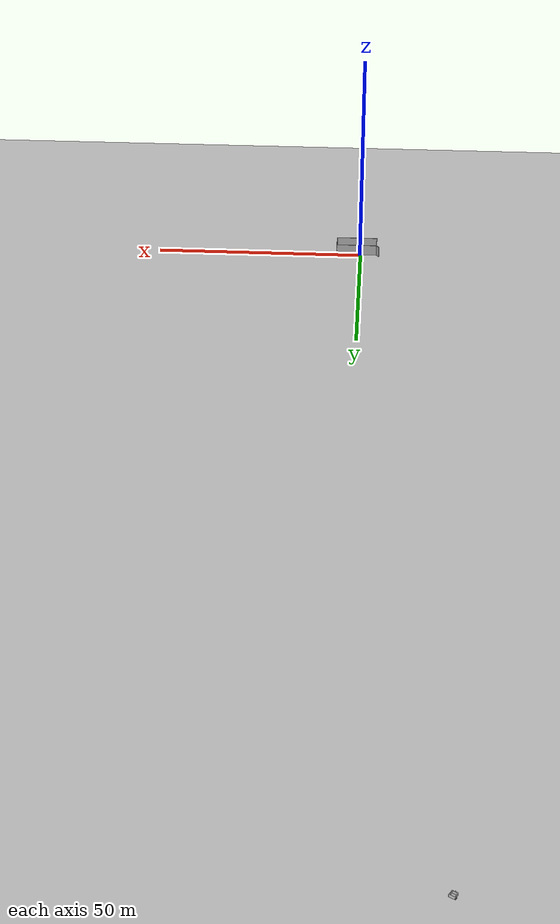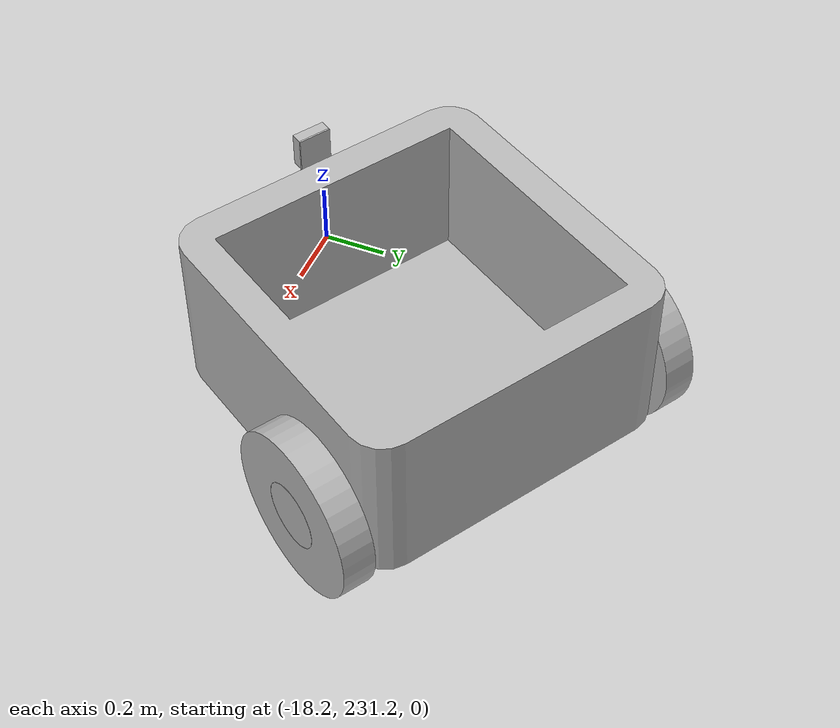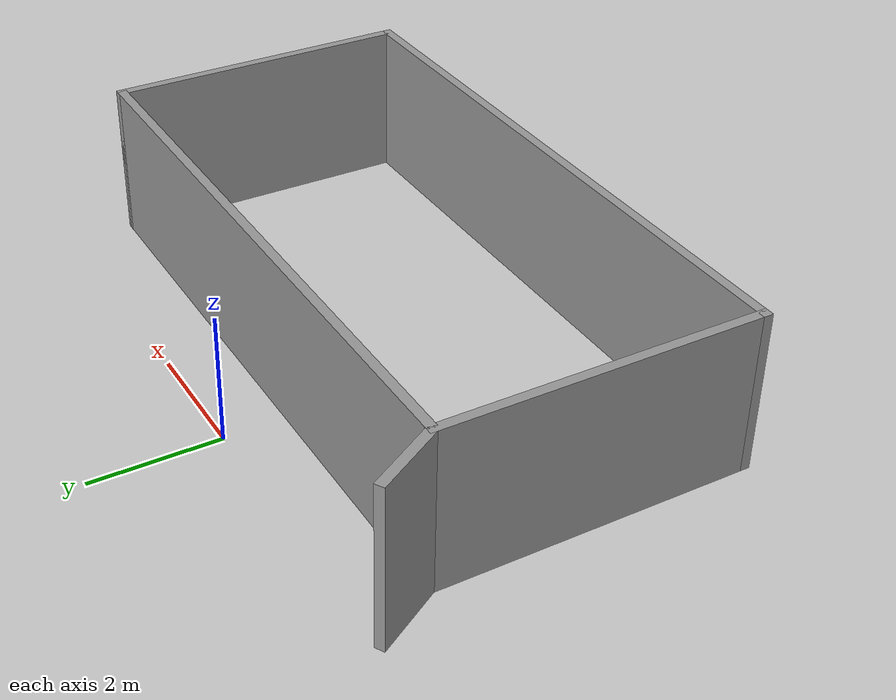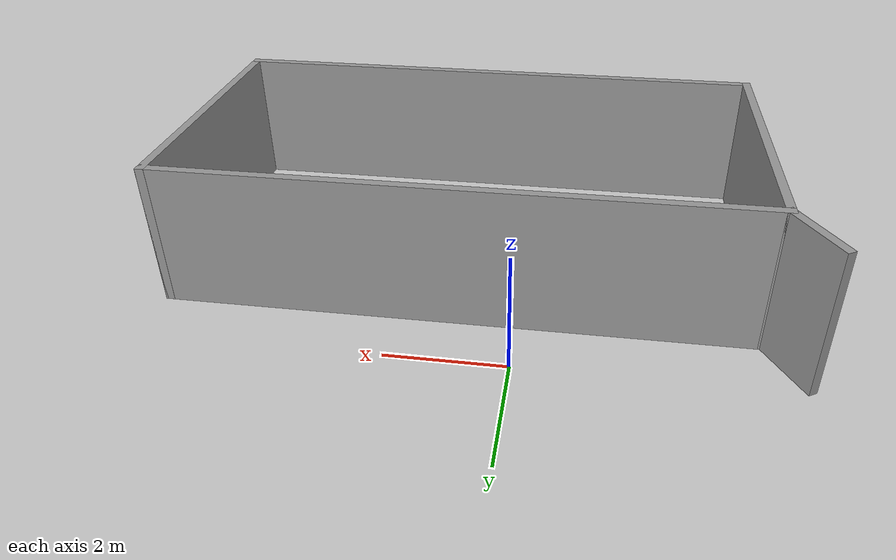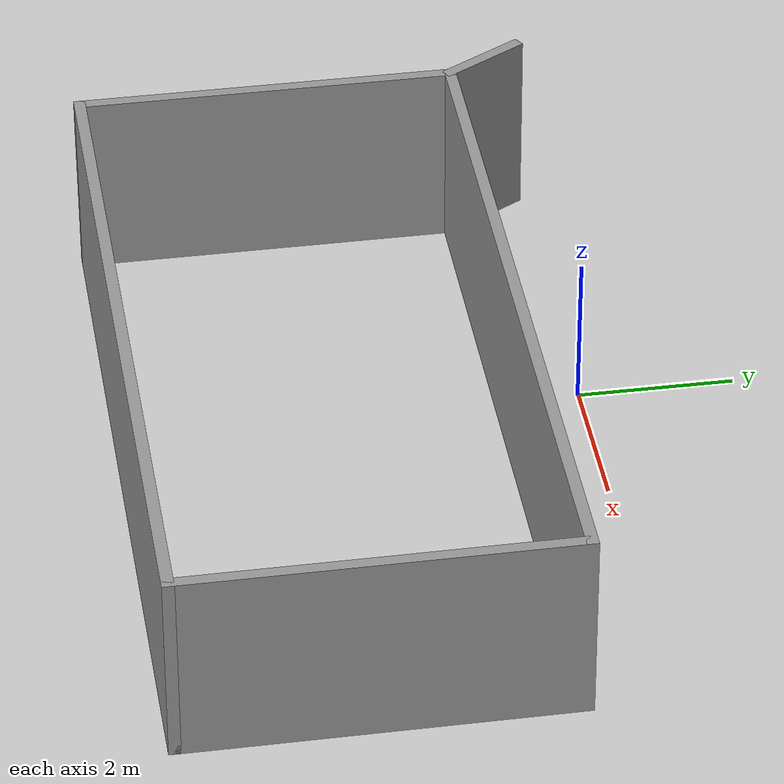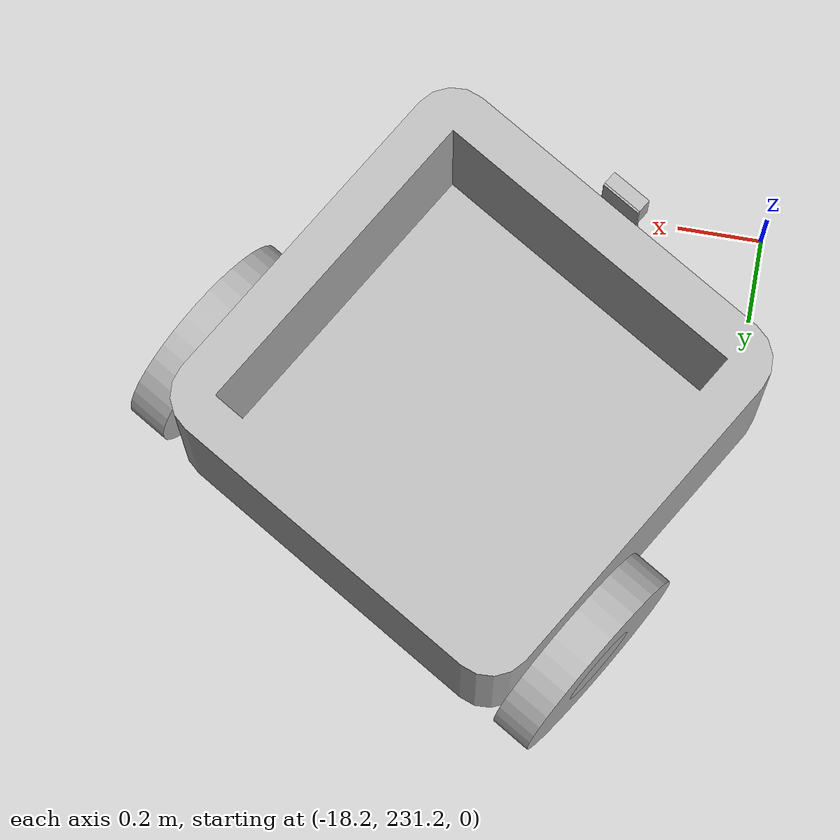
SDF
<sdf version="1.7">
 <world name="default">
  <light name="sun" type="directional">
   <pose>0 0 10 0 -0 0</pose>
   <diffuse>0.8 0.8 0.8 1</diffuse>
   <specular>0.2 0.2 0.2 1</specular>
   <attenuation>
    <range>1000</range>
    <constant>0.9</constant>
    <linear>0.01</linear>
    <quadratic>0.001</quadratic>
   </attenuation>
   <direction>-0.5 0.1 -0.9</direction>
   <spot><inner_angle>0</inner_angle><outer_angle>0</outer_angle><falloff>0</falloff></spot>
  </light>
  <model name="ground_plane">
   <static>1</static>
   <link name="link">
    <collision name="collision">
     <geometry><plane><normal>0 0 1</normal><size>100 100</size></plane></geometry>
     <surface><friction><ode><mu>100</mu><mu2>50</mu2></ode></friction></surface>
    </collision>
    <visual name="visual">
     <cast_shadows>0</cast_shadows>
     <geometry><plane><normal>0 0 1</normal><size>100 100</size></plane></geometry>
     <material>
      <script><uri>file://media/materials/scripts/gazebo.material</uri><name>Gazebo/Grey</name></script>
     </material>
    </visual>
   </link>
  </model>
  <gravity>0 0 -9.8</gravity>
  <magnetic_field>6e-06 2.3e-05 -4.2e-05</magnetic_field>
  <atmosphere type="adiabatic"/>
  <physics type="ode">
   <max_step_size>0.001</max_step_size>
   <real_time_factor>1</real_time_factor>
   <real_time_update_rate>1000</real_time_update_rate>
  </physics>
  <scene><ambient>0.4 0.4 0.4 1</ambient><background>0.7 0.7 0.7 1</background><shadows>1</shadows></scene>
  <spherical_coordinates>
   <surface_model>EARTH_WGS84</surface_model>
   <latitude_deg>0</latitude_deg>
   <longitude_deg>0</longitude_deg>
   <elevation>0</elevation>
   <heading_deg>0</heading_deg>
  </spherical_coordinates>
  <model name="Robothos">
   <link name="base_link">
    <inertial>
     <pose>-0.0046 0 0.161679 0 -0 0</pose>
     <mass>215.174</mass>
     <inertia>
      <ixx>32.4753</ixx>
      <ixy>5.6691e-15</ixy>
      <ixz>-0.154166</ixz>
      <iyy>31.2584</iyy>
      <iyz>-4.17292e-15</iyz>
      <izz>53.2485</izz>
     </inertia>
    </inertial>
    <collision name="base_link_collision">
     <geometry>
      <mesh><scale>1 1 1</scale><uri>/home/arm/catkin_ws/src/Robothos/meshes/base_link.STL</uri></mesh>
     </geometry>
    </collision>
    <collision name="base_link_fixed_joint_lump__Raser_Link_collision_1">
     <geometry>
      <mesh><scale>1 1 1</scale><uri>/home/arm/catkin_ws/src/Robothos/meshes/Raser_Link.STL</uri></mesh>
     </geometry>
    </collision>
    <visual name="base_link_visual">
     <geometry>
      <mesh><scale>1 1 1</scale><uri>/home/arm/catkin_ws/src/Robothos/meshes/base_link.STL</uri></mesh>
     </geometry>
    </visual>
    <visual name="base_link_fixed_joint_lump__Raser_Link_visual_1">
     <geometry>
      <mesh><scale>1 1 1</scale><uri>/home/arm/catkin_ws/src/Robothos/meshes/Raser_Link.STL</uri></mesh>
     </geometry>
    </visual>
   </link>
   <joint name="Wheel_Right_Joint" type="revolute">
    <pose relative_to="base_link">0 0 0 0 -0 0</pose>
    <parent>base_link</parent>
    <child>Wheel_Right_Link</child>
    <axis>
     <xyz>0 1 0</xyz>
     <limit><lower>0</lower><upper>0</upper><effort>30</effort><velocity>30</velocity></limit>
     <dynamics><spring_reference>0</spring_reference><spring_stiffness>0</spring_stiffness></dynamics>
    </axis>
   </joint>
   <link name="Wheel_Right_Link">
    <pose relative_to="Wheel_Right_Joint">0 0 0 0 -0 0</pose>
    <inertial>
     <pose>-0.25 -0.55 0.05 0 -0 0</pose>
     <mass>16.4934</mass>
     <inertia>
      <ixx>0.312687</ixx>
      <ixy>-3.44543e-18</ixy>
      <ixz>0</ixz>
      <iyy>0.597884</iyy>
      <iyz>-4.86689e-32</iyz>
      <izz>0.312687</izz>
     </inertia>
    </inertial>
    <collision name="Wheel_Right_Link_collision">
     <geometry>
      <mesh><scale>1 1 1</scale><uri>/home/arm/catkin_ws/src/Robothos/meshes/Wheel_Right_Link.STL</uri></mesh>
     </geometry>
    </collision>
    <visual name="Wheel_Right_Link_visual">
     <geometry>
      <mesh><scale>1 1 1</scale><uri>/home/arm/catkin_ws/src/Robothos/meshes/Wheel_Right_Link.STL</uri></mesh>
     </geometry>
    </visual>
   </link>
   <joint name="Wheel_left_Joint" type="revolute">
    <pose relative_to="base_link">0 0 0 0 -0 0</pose>
    <parent>base_link</parent>
    <child>Wheel_left_Link</child>
    <axis>
     <xyz>0 -1 0</xyz>
     <limit><lower>0</lower><upper>0</upper><effort>30</effort><velocity>30</velocity></limit>
     <dynamics><spring_reference>0</spring_reference><spring_stiffness>0</spring_stiffness></dynamics>
    </axis>
   </joint>
   <link name="Wheel_left_Link">
    <pose relative_to="Wheel_left_Joint">0 0 0 0 -0 0</pose>
    <inertial>
     <pose>-0.25 0.55 0.05 0 -0 0</pose>
     <mass>16.4934</mass>
     <inertia>
      <ixx>0.312687</ixx>
      <ixy>1.99285e-15</ixy>
      <ixz>-7.88861e-31</ixz>
      <iyy>0.597884</iyy>
      <iyz>5.05961e-18</iyz>
      <izz>0.312687</izz>
     </inertia>
    </inertial>
    <collision name="Wheel_left_Link_collision">
     <geometry>
      <mesh><scale>1 1 1</scale><uri>/home/arm/catkin_ws/src/Robothos/meshes/Wheel_left_Link.STL</uri></mesh>
     </geometry>
    </collision>
    <visual name="Wheel_left_Link_visual">
     <geometry>
      <mesh><scale>1 1 1</scale><uri>/home/arm/catkin_ws/src/Robothos/meshes/Wheel_left_Link.STL</uri></mesh>
     </geometry>
    </visual>
   </link>
   <pose>-17.5911 231.784 0.199925 0.000165 -0.000169 -2.1196</pose>
  </model>
  <model name="test">
   <pose>0.736274 -2.95496 0 0 -0 0</pose>
   <link name="Wall_0">
    <collision name="Wall_0_Collision">
     <geometry><box><size>10 0.15 2.5</size></box></geometry>
     <pose>0 0 1.25 0 -0 0</pose>
    </collision>
    <visual name="Wall_0_Visual">
     <pose>0 0 1.25 0 -0 0</pose>
     <geometry><box><size>10 0.15 2.5</size></box></geometry>
     <material>
      <script><uri>file://media/materials/scripts/gazebo.material</uri><name>Gazebo/Grey</name></script>
      <ambient>1 1 1 1</ambient>
     </material>
     <meta><layer>0</layer></meta>
    </visual>
    <pose>0.288726 1.93496 0 0 -0 0</pose>
   </link>
   <link name="Wall_1">
    <collision name="Wall_1_Collision">
     <geometry><box><size>5 0.15 2.5</size></box></geometry>
     <pose>0 0 1.25 0 -0 0</pose>
    </collision>
    <visual name="Wall_1_Visual">
     <pose>0 0 1.25 0 -0 0</pose>
     <geometry><box><size>5 0.15 2.5</size></box></geometry>
     <material>
      <script><uri>file://media/materials/scripts/gazebo.material</uri><name>Gazebo/Grey</name></script>
      <ambient>1 1 1 1</ambient>
     </material>
     <meta><layer>0</layer></meta>
    </visual>
    <pose>5.21373 -0.49004 0 0 -0 -1.5708</pose>
   </link>
   <link name="Wall_2">
    <collision name="Wall_2_Collision">
     <geometry><box><size>10 0.15 2.5</size></box></geometry>
     <pose>0 0 1.25 0 -0 0</pose>
    </collision>
    <visual name="Wall_2_Visual">
     <pose>0 0 1.25 0 -0 0</pose>
     <geometry><box><size>10 0.15 2.5</size></box></geometry>
     <material>
      <script><uri>file://media/materials/scripts/gazebo.material</uri><name>Gazebo/Grey</name></script>
      <ambient>1 1 1 1</ambient>
     </material>
     <meta><layer>0</layer></meta>
    </visual>
    <pose>0.288726 -2.91504 0 0 -0 3.14159</pose>
   </link>
   <link name="Wall_3">
    <collision name="Wall_3_Collision">
     <geometry><box><size>5 0.15 2.5</size></box></geometry>
     <pose>0 0 1.25 0 -0 0</pose>
    </collision>
    <visual name="Wall_3_Visual">
     <pose>0 0 1.25 0 -0 0</pose>
     <geometry><box><size>5 0.15 2.5</size></box></geometry>
     <material>
      <script><uri>file://media/materials/scripts/gazebo.material</uri><name>Gazebo/Grey</name></script>
      <ambient>1 1 1 1</ambient>
     </material>
     <meta><layer>0</layer></meta>
    </visual>
    <pose>-4.63627 -0.49004 0 0 -0 1.5708</pose>
   </link>
   <link name="Wall_4">
    <collision name="Wall_4_Collision">
     <geometry><box><size>1.25 0.15 2.5</size></box></geometry>
     <pose>0 0 1.25 0 -0 0</pose>
    </collision>
    <visual name="Wall_4_Visual">
     <pose>0 0 1.25 0 -0 0</pose>
     <geometry><box><size>1.25 0.15 2.5</size></box></geometry>
     <material>
      <script><uri>file://media/materials/scripts/gazebo.material</uri><name>Gazebo/Grey</name></script>
      <ambient>0 0 0 1</ambient>
     </material>
     <meta><layer>0</layer></meta>
    </visual>
    <pose>-4.91127 2.41127 0 0 -0 2.0944</pose>
   </link>
   <static>1</static>
  </model>
 </world>
</sdf>
